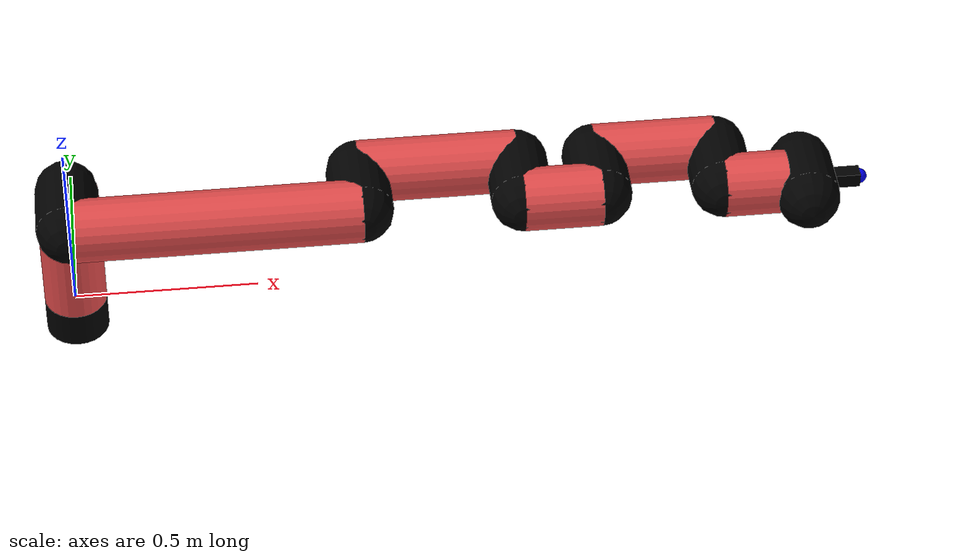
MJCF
<mujoco model="manipulator">
		<compiler angle="degree" coordinate="local" inertiafromgeom="auto" meshdir="meshes/"/>
		<option gravity="0 0 0" integrator="RK4" iterations="30" timestep="0.01"/>

		<default>
		<joint armature="1" limited="true" stiffness="10" damping="15" frictionloss="5.0"/>
		<geom conaffinity="1" condim="3" contype="1" friction=".5 .1 .1" margin="0.002"/>
		<motor ctrllimited="true"/>
		<position ctrllimited="true"/>
		</default>

		<asset>
		<texture builtin="gradient" height="100" rgb1="1.0 1.0 1.0" rgb2="1.0 1.0 1.0" type="skybox" width="100"/>
		<texture builtin="flat" height="32" name="arm_tex" rgb1="0.9 0.3 0.3" type="2d" width="32"/>
		<texture builtin="flat" height="32" name="gripper_tex" rgb1="0.0 0.0 0.0" type="cube" width="32"/>

		<material name="arm_mat" shininess="0.1" specular="0.1" texture="arm_tex"/>
		<material name="gripper_mat" shininess="1" specular="1" texture="gripper_tex"/>
		</asset>

		<worldbody>
		<light cutoff="45" diffuse=".8 .8 .8" dir="0 0.16 -1" directional="false" name="light" pos="0 -2.0 8.0" specular="0.3 0.3 0.3"/>

		<body name="base_link" pos="0 0 -0.1">
		<geom fromto="0 0 0 0 0 0.1" material="arm_mat" name="base_link" rgba="0.0 0.0 0.0 1" size="0.085" type="cylinder"/>
		</body>

		<body name="l1" pos="0 0 0">
<geom fromto="0 0 0 0 0 0.38" material="arm_mat" name="l1" rgba="0.9 0.3 0.3 1" size="0.085" type="cylinder"/>
<geom fromto="0 0 0.38 0 -0.16 0.38" material="arm_mat" name="l1_ex" rgba="0.0 0.0 0.0 1" size="0.085" type="capsule"/>
<joint axis="0 0 1" name="j1" pos="0 0 0" range="-90 90" damping="36.04" frictionloss="7.03"/>

<body name="l2" pos="0 -0.16 0.38">
<geom fromto="0 0 0 0.78 0 0" material="arm_mat" name="l2" rgba="0.9 0.3 0.3 1" size="0.085" type="cylinder"/>
<geom fromto="0.78 0 0 0.78 0.16 0" material="arm_mat" name="l2_ex" rgba="0.0 0.0 0.0 1" size="0.085" type="capsule"/>
<joint axis="0.0 1.0 0.0" name="j2" pos="0 0 0" range="-90 60" damping="41.1" frictionloss="10.59"/>

<body name="l3" pos="0.78 0.16 0">
<geom fromto="0 0 0 0.43 0 0" material="arm_mat" name="l3" rgba="0.9 0.3 0.3 1" size="0.085" type="cylinder"/>
<geom fromto="0.43 0 0 0.43 -0.16 0" material="arm_mat" name="l3_ex" rgba="0.0 0.0 0.0 1" size="0.085" type="capsule"/>
<joint axis="0.0 1.0 0.0" name="j3" pos="0 0 0" range="-30 60" damping="28.32" frictionloss="8.75"/>

<body name="l4" pos="0.43 -0.16 0">
<geom fromto="0 0 0 0.21 0 0" material="arm_mat" name="l4" rgba="0.9 0.3 0.3 1" size="0.085" type="cylinder"/>
<geom fromto="0.21 0 0 0.21 0.16 0" material="arm_mat" name="l4_ex" rgba="0.0 0.0 0.0 1" size="0.085" type="capsule"/>
<joint axis="0.0 1.0 0.0" name="j4" pos="0 0 0" range="-30 60" damping="12.88" frictionloss="11.76"/>

<body name="l5" pos="0.21 0.16 0">
<geom fromto="0 0 0 0.33 0 0" material="arm_mat" name="l5" rgba="0.9 0.3 0.3 1" size="0.085" type="cylinder"/>
<geom fromto="0.33 0 0 0.33 -0.16 0" material="arm_mat" name="l5_ex" rgba="0.0 0.0 0.0 1" size="0.085" type="capsule"/>
<joint axis="0.0 1.0 0.0" name="j5" pos="0 0 0" range="-30 60" damping="14.24" frictionloss="8.26"/>

<body name="l6" pos="0.33 -0.16 0">
<geom fromto="0 0 0 0.17 0 0" material="arm_mat" name="l6" rgba="0.9 0.3 0.3 1" size="0.085" type="cylinder"/>
<joint axis="0.0 1.0 0.0" name="j6" pos="0 0 0" range="-30 60" damping="21.33" frictionloss="13.95"/>

<body name="gripper" pos="0.17 0 0">
<geom fromto="0.05 -0.07 0 0.05 0.07 0" material="gripper_mat" name="gripper" rgba="0.0 0.0 0.0 1" size="0.085" type="capsule"/><joint axis="1 0 0" name="j7" pos="0 0 0" range="-90 90" damping="15" frictionloss="5.0"/><body name="finger" pos="0.1 0 0">
<geom fromto="0 0.0 0 0.1 0.0 0" material="gripper_mat" name="finger" rgba="0.0 0.0 0.0 1" size="0.020 0.06 0.06" type="box"/>
</body>
<site name="current" pos="0.2 0. 0.0" rgba="0. 0. 1.0 1" size="0.02" type="sphere"/>
</body>
</body>
</body>
</body>
</body>
</body>
</body>
</worldbody>
<actuator>
<motor ctrllimited="true" ctrlrange="-1.0 1.0" joint="j1" gear="38.18"/>
<motor ctrllimited="true" ctrlrange="-1.0 1.0" joint="j2" gear="83.97"/>
<motor ctrllimited="true" ctrlrange="-1.0 1.0" joint="j3" gear="64.51"/>
<motor ctrllimited="true" ctrlrange="-1.0 1.0" joint="j4" gear="72.0"/>
<motor ctrllimited="true" ctrlrange="-1.0 1.0" joint="j5" gear="45.28"/>
<motor ctrllimited="true" ctrlrange="-1.0 1.0" joint="j6" gear="70.19"/>
<motor ctrllimited="true" ctrlrange="-1.0 1.0" joint="j7" gear="80"/>
</actuator>
</mujoco>
